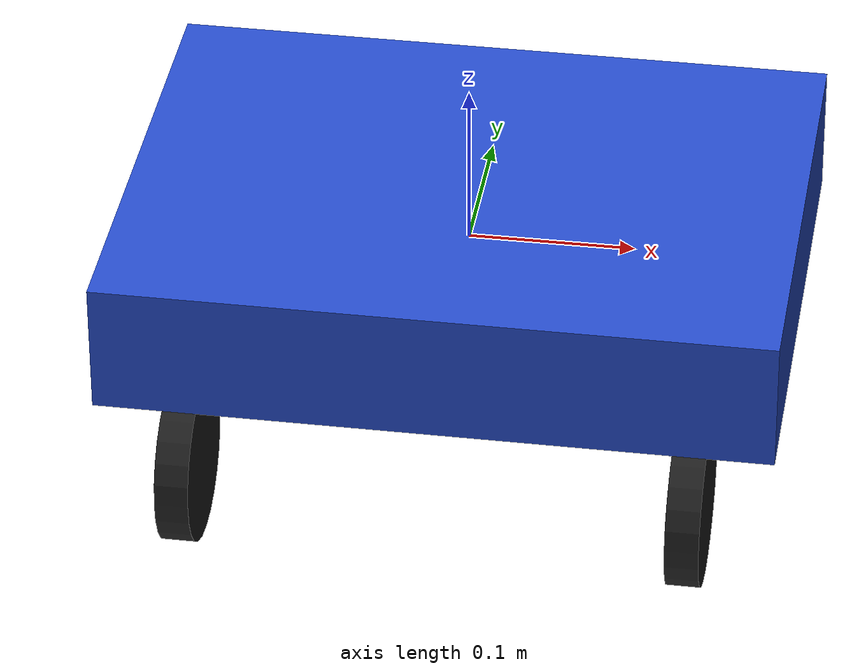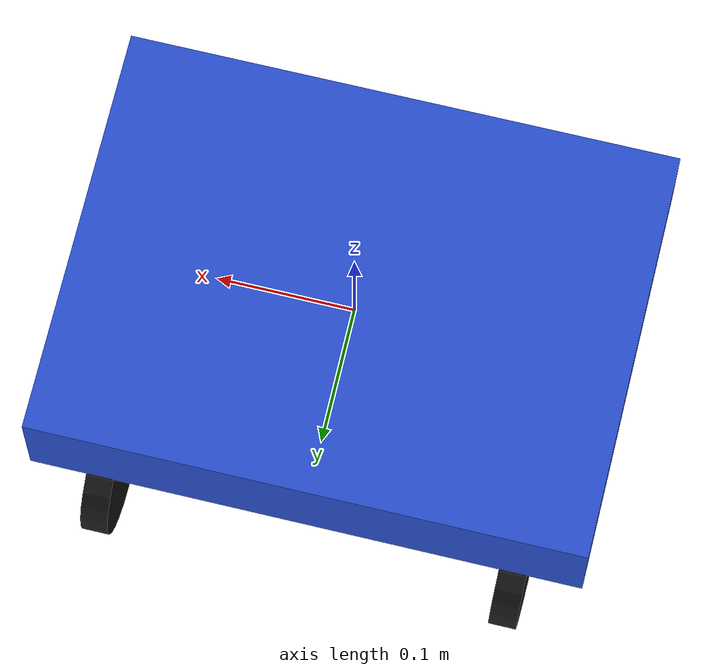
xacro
<?xml version="1.0"?>
<robot name="4wd_robot" xmlns:xacro="http://ros.org/wiki/xacro">
  <xacro:property name="wheel_radius" value="0.05"/>
  <xacro:property name="wheel_width" value="0.02"/>
  <xacro:property name="wheelbase" value="0.3"/>
  <xacro:property name="track" value="0.25"/>
  <xacro:property name="body_length" value="0.4"/>
  <xacro:property name="body_width" value="0.3"/>
  <xacro:property name="body_height" value="0.08"/>

  <link name="base_link">
    <visual>
      <geometry>
        <box size="${body_length} ${body_width} ${body_height}"/>
      </geometry>
      <material name="blue"/>
    </visual>
    <collision>
      <geometry>
        <box size="${body_length} ${body_width} ${body_height}"/>
      </geometry>
    </collision>
    <inertial>
      <mass value="5.0"/>
      <origin xyz="0 0 0"/>
      <inertia ixx="0.1" ixy="0.0" ixz="0.0" iyy="0.1" iyz="0.0" izz="0.1"/>
    </inertial>
  </link>

  <xacro:macro name="wheel" params="name x y">
    <link name="${name}">
      <visual>
        <geometry>
          <cylinder length="${wheel_width}" radius="${wheel_radius}"/>
        </geometry>
        <material name="black"/>
      </visual>
      <collision>
        <geometry>
          <cylinder length="${wheel_width}" radius="${wheel_radius}"/>
        </geometry>
      </collision>
      <inertial>
        <mass value="0.2"/>
        <origin xyz="0 0 0"/>
        <inertia ixx="0.001" ixy="0.0" ixz="0.0" iyy="0.001" iyz="0.0" izz="0.001"/>
      </inertial>
    </link>
    <joint name="${name}_joint" type="continuous">
      <parent link="base_link"/>
      <child link="${name}"/>
      <origin xyz="${x} ${y} -${body_height/2 + wheel_radius}" rpy="0 1.5708 0"/>
      <axis xyz="0 1 0"/>
    </joint>
  </xacro:macro>

  <xacro:wheel name="front_left_wheel"  x="${wheelbase/2}"  y="${track/2}"/>
  <xacro:wheel name="front_right_wheel" x="${wheelbase/2}"  y="-${track/2}"/>
  <xacro:wheel name="rear_left_wheel"   x="-${wheelbase/2}" y="${track/2}"/>
  <xacro:wheel name="rear_right_wheel"  x="-${wheelbase/2}" y="-${track/2}"/>

  <gazebo>
    <plugin name="diff_drive_controller" filename="libgazebo_ros_diff_drive.so">
      <ros>
        <namespace>/</namespace>
      </ros>
      <left_wheel>front_left_wheel_joint</left_wheel>
      <left_wheel>rear_left_wheel_joint</left_wheel>
      <right_wheel>front_right_wheel_joint</right_wheel>
      <right_wheel>rear_right_wheel_joint</right_wheel>
      <wheel_separation>${track}</wheel_separation>
      <wheel_diameter>${2*wheel_radius}</wheel_diameter>
      <publish_odom>true</publish_odom>
      <publish_odom_tf>true</publish_odom_tf>
      <odometry_frame>odom</odometry_frame>
      <robot_base_frame>base_link</robot_base_frame>
      <command_topic>cmd_vel</command_topic>
      <odometry_topic>odom</odometry_topic>
    </plugin>
  </gazebo>
</robot>
